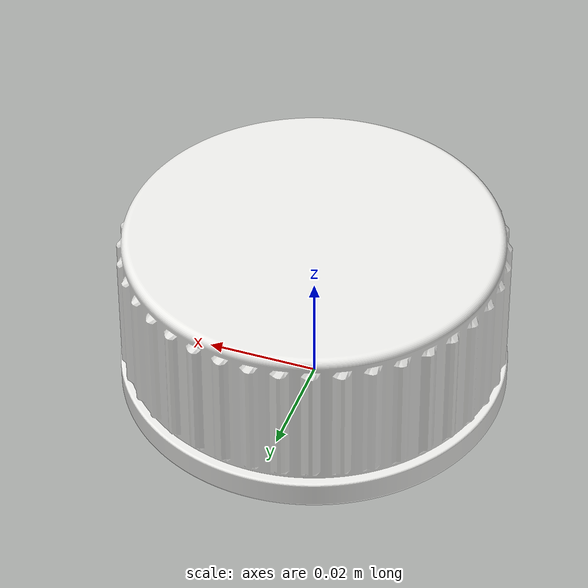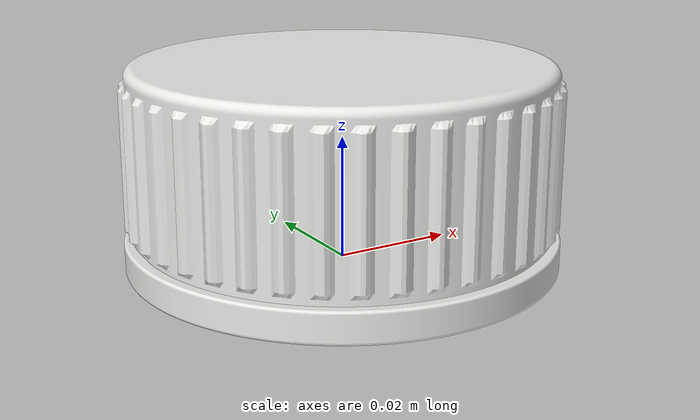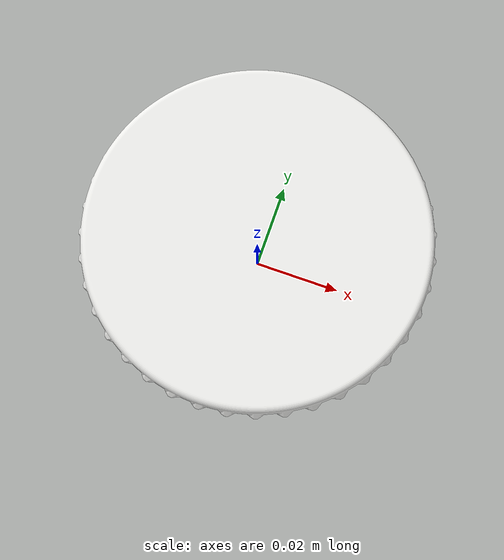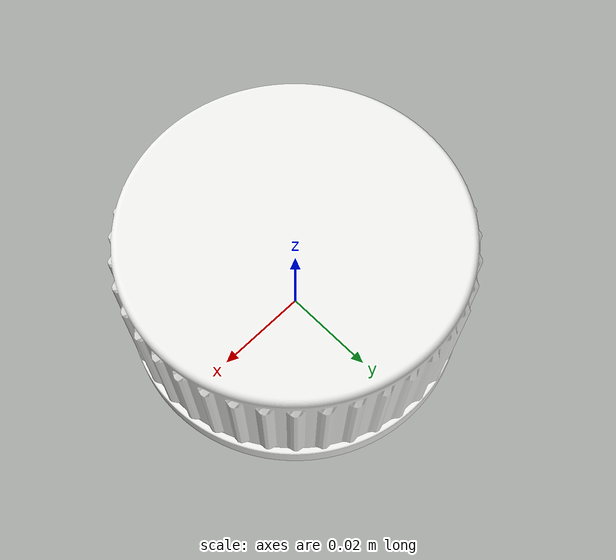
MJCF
<mujoco model="cap_2l">
  <asset>
    <mesh name="cap_2l_00" file="cap_2l_00.obj" inertia="exact"/>
  </asset>
  <worldbody>
    <body name="cap_2l">
      <geom type="mesh" mesh="cap_2l_00" rgba="0.920 0.920 0.910 1.000" density="900"/>  <!-- PP_blanco_tapon -->
    </body>
  </worldbody>
</mujoco>
